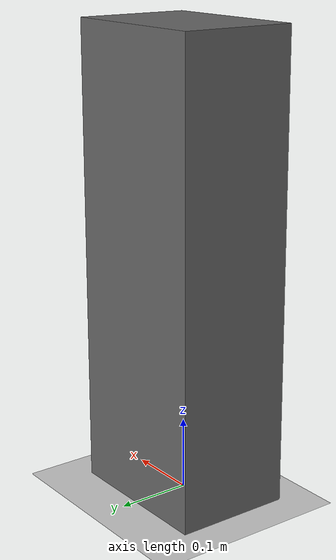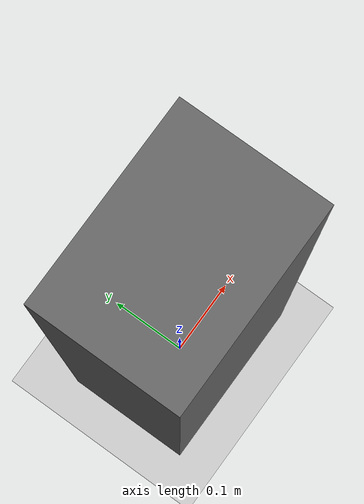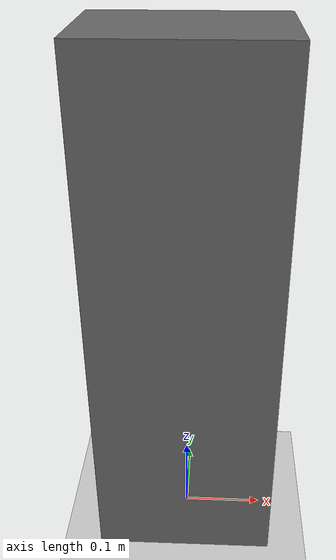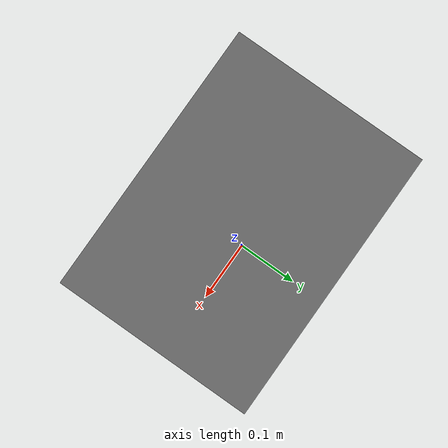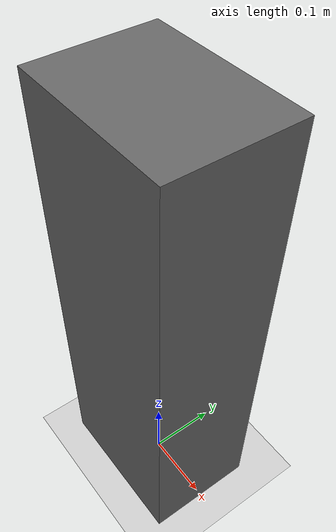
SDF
<?xml version="1.0"?>
<sdf version="1.8">
  <world name="cooperative_transport_friction">
    <gravity>0 0 -9.81</gravity>
    <physics name="2ms_contact" type="ignored">
      <max_step_size>0.002</max_step_size>
      <real_time_factor>1.0</real_time_factor>
      <real_time_update_rate>500</real_time_update_rate>
    </physics>

    <plugin filename="ignition-gazebo-physics-system" name="ignition::gazebo::systems::Physics"/>
    <plugin filename="ignition-gazebo-user-commands-system" name="ignition::gazebo::systems::UserCommands"/>
    <plugin filename="ignition-gazebo-scene-broadcaster-system" name="ignition::gazebo::systems::SceneBroadcaster"/>
    <plugin filename="ignition-gazebo-contact-system" name="ignition::gazebo::systems::Contact"/>
    <plugin filename="ignition-gazebo-forcetorque-system" name="ignition::gazebo::systems::ForceTorque"/>
    <plugin filename="libcooperative_friction_grip-system.so"
            name="cooperative_transport::FrictionGripSystem">
      <linear_stiffness>12500</linear_stiffness>
      <linear_damping>250</linear_damping>
      <maximum_force>250</maximum_force>
      <maximum_force_rate>600</maximum_force_rate>
      <vertical_stiffness>8000</vertical_stiffness>
      <vertical_damping>120</vertical_damping>
      <maximum_vertical_force>40</maximum_vertical_force>
      <maximum_vertical_force_rate>250</maximum_vertical_force_rate>
      <yaw_stiffness>20</yaw_stiffness>
      <yaw_damping>3</yaw_damping>
      <maximum_torque>8</maximum_torque>
      <activation_height>0.679</activation_height>
    </plugin>
    <plugin filename="ignition-gazebo-sensors-system" name="ignition::gazebo::systems::Sensors">
      <render_engine>ogre2</render_engine>
    </plugin>

    <light type="directional" name="sun">
      <cast_shadows>true</cast_shadows>
      <pose>0 0 10 0 0 0</pose>
      <diffuse>0.8 0.8 0.8 1</diffuse>
      <specular>0.2 0.2 0.2 1</specular>
      <direction>-0.5 0.1 -0.9</direction>
    </light>

    <model name="ground_plane">
      <static>true</static>
      <link name="link">
        <collision name="collision">
          <geometry>
            <plane><normal>0 0 1</normal><size>20 20</size></plane>
          </geometry>
          <surface>
            <friction><ode><mu>1.0</mu><mu2>1.0</mu2></ode></friction>
          </surface>
        </collision>
        <visual name="visual">
          <geometry>
            <plane><normal>0 0 1</normal><size>20 20</size></plane>
          </geometry>
        </visual>
      </link>
    </model>

    <!-- This is the only temporary object in the open field. It is removed
         after both friction grasps reach HOLDING and before transport. -->
    <model name="grasp_support">
      <static>true</static>
      <pose>0 0 0.3175 0 0 0</pose>
      <link name="link">
        <collision name="collision">
          <geometry><box><size>0.22 0.16 0.635</size></box></geometry>
          <surface>
            <friction><ode><mu>0.8</mu><mu2>0.8</mu2></ode></friction>
          </surface>
        </collision>
        <visual name="visual">
          <geometry><box><size>0.22 0.16 0.635</size></box></geometry>
          <material>
            <ambient>0.3 0.3 0.3 1</ambient>
            <diffuse>0.4 0.4 0.4 1</diffuse>
          </material>
        </visual>
      </link>
    </model>
  </world>
</sdf>
